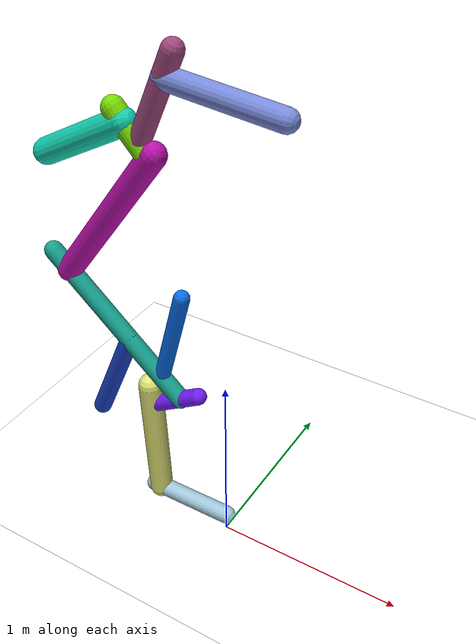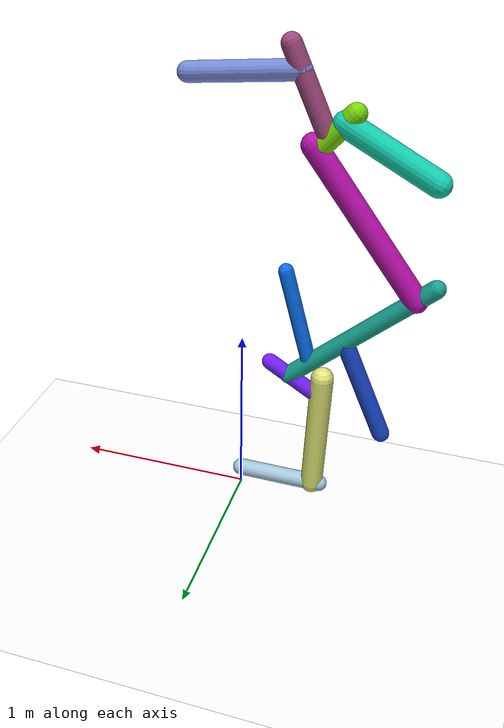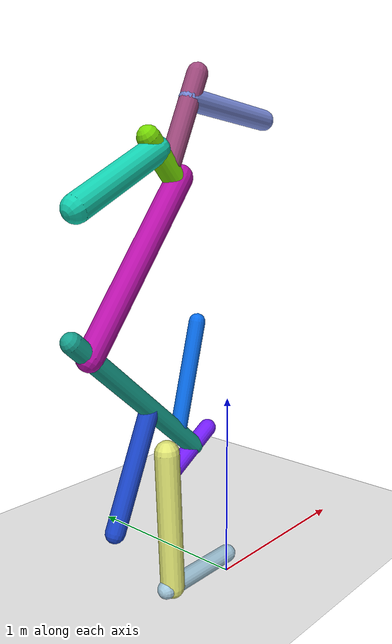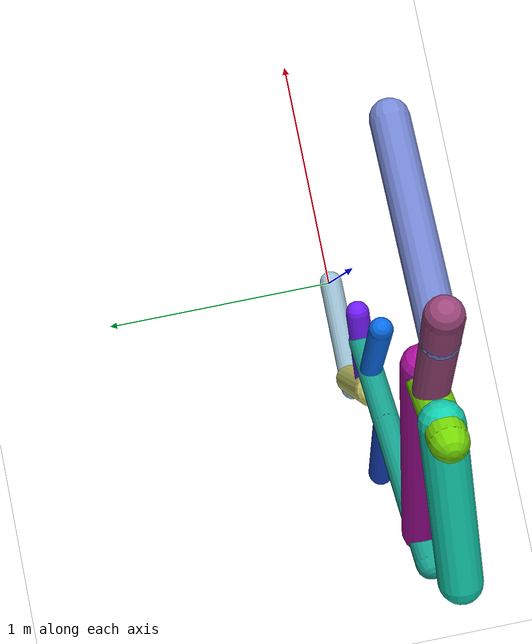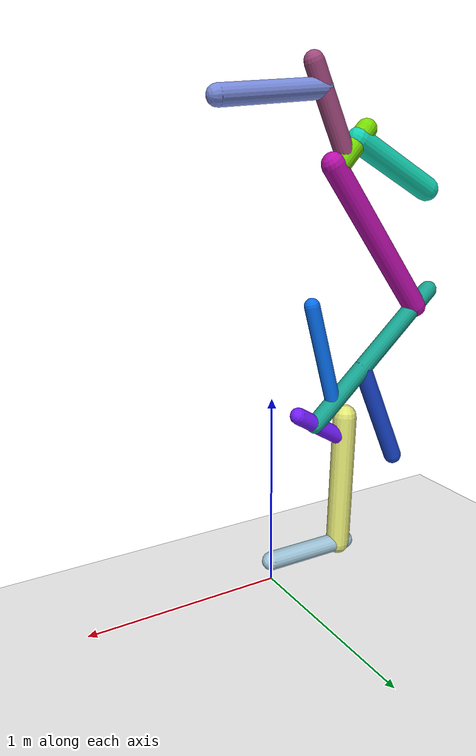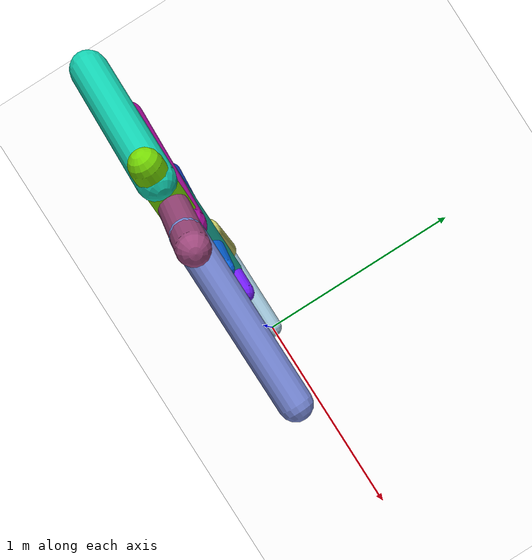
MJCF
<mujoco model="morphology">
  <option timestep="0.01"/>
  <default>
    <default class="/"/>
    <default class="0/"/>
    <default class="0/1/"/>
    <default class="0/1/2/"/>
    <default class="0/1/2/3/"/>
    <default class="0/1/2/3/4/"/>
    <default class="0/1/2/3/5/"/>
    <default class="0/1/2/3/5/6/"/>
    <default class="0/1/2/3/5/6/7/"/>
    <default class="0/1/2/3/5/6/8/"/>
    <default class="0/1/2/3/5/6/8/9/"/>
    <default class="0/1/2/3/10/"/>
  </default>
  <asset>
    <texture name="texplane" type="2d" builtin="checker" rgb1="0.10000000000000001 0.20000000000000001 0.29999999999999999" rgb2="0.20000000000000001 0.29999999999999999 0.40000000000000002" width="300" height="300"/>
    <material name="MatPlane" class="/" texture="texplane" texrepeat="20 20" specular="1" shininess="1" reflectance="0.5"/>
  </asset>
  <worldbody>
    <light name="//unnamed_light_0" class="/" directional="true" pos="0 0 1.5" dir="0 0 -1.3" cutoff="100" exponent="1" diffuse="1 1 1" specular="0.10000000000000001 0.10000000000000001 0.10000000000000001"/>
    <geom name="ground" class="/" type="plane" size="15 15 0.5" material="MatPlane" rgba="1 1 1 1"/>
    <site name="body" class="/" size="9.9999999999999995e-07 9.9999999999999995e-07 9.9999999999999995e-07" pos="0 0 0.10381871708668769"/>
    <body pos="0 0 0.10381871708668769" name="0/">
      <joint name="0/rootx/" class="/" type="slide" axis="1 0 0" limited="false" stiffness="0" armature="0" damping="0"/>
      <joint name="0/rootz/" class="/" type="slide" axis="0 0 1" limited="false" stiffness="0" armature="0" damping="0"/>
      <joint name="0/rooty/" class="/" type="hinge" axis="0 1 0" limited="false" stiffness="0" armature="0" damping="0"/>
      <geom name="0/geom" class="0/" type="capsule" contype="1" conaffinity="1" condim="3" size="0.048607320074202973" rgba="0.62600471413747139 0.77205023131233741 0.84819178884413216 1" friction="0.59999999999999998 0.10000000000000001 0.10000000000000001" fromto="0 0 0 -0.47253581909399595 0 -0.0038187171260941621"/>
      <site name="0/end0" class="0/" size="0.0050000000000000001" pos="-0.47253581909399595 0 -0.0038187171260941621"/>
      <site name="0/attach1" class="0/" size="9.9999999999999995e-07 9.9999999999999995e-07 9.9999999999999995e-07" pos="-0.43098798921221126 0 -0.0034829554692830038"/>
      <body pos="-0.43098798921221126 0 -0.0034829554692830038" name="0/1/">
        <joint name="0/1/joint/" class="0/" type="hinge" axis="0 1 0" limited="true" range="-55.705999735974899 55.705999735974899"/>
        <geom name="0/1/geom" class="0/1/" type="capsule" contype="1" conaffinity="1" condim="3" size="0.063082529030815168" rgba="0.87429581714171145 0.89532965351088889 0.45134733662487347 1" friction="0.59999999999999998 0.10000000000000001 0.10000000000000001" fromto="0 0 0 -0.02599942840614311 0 0.73039289112134376"/>
        <site name="0/1/end1" class="0/1/" size="0.0050000000000000001" pos="-0.02599942840614311 0 0.73039289112134376"/>
        <site name="0/1/attach2" class="0/1/" size="9.9999999999999995e-07 9.9999999999999995e-07 9.9999999999999995e-07" pos="-0.021489251709336462 0 0.60369006729040253"/>
        <body pos="-0.021489251709336462 0 0.60369006729040253" name="0/1/2/">
          <geom name="0/1/2/geom" class="0/1/2/" type="capsule" contype="1" conaffinity="1" condim="3" size="0.044060517229819351" rgba="0.44856449677686283 0.10637607332721166 0.97819265433600922 1" friction="0.59999999999999998 0.10000000000000001 0.10000000000000001" fromto="0 0 0 0.29253589475810671 0 0.17930102197794628"/>
          <site name="0/1/2/end2" class="0/1/2/" size="0.0050000000000000001" pos="0.29253589475810671 0 0.17930102197794628"/>
          <site name="0/1/2/attach3" class="0/1/2/" size="9.9999999999999995e-07 9.9999999999999995e-07 9.9999999999999995e-07" pos="0.18518552256895143 0 0.11350386071284979"/>
          <body pos="0.18518552256895143 0 0.11350386071284979" name="0/1/2/3/">
            <joint name="0/1/2/3/joint/" class="0/1/2/" type="hinge" axis="0 1 0" limited="true" range="-41.23968528833818 41.23968528833818"/>
            <geom name="0/1/2/3/geom" class="0/1/2/3/" type="capsule" contype="1" conaffinity="1" condim="3" size="0.048410276025171631" rgba="0.080124397023007887 0.62487969006987742 0.55062329589369174 1" friction="0.59999999999999998 0.10000000000000001 0.10000000000000001" fromto="0 0 0 -0.73170131449904785 0 0.65085784075618425"/>
            <site name="0/1/2/3/end3" class="0/1/2/3/" size="0.0050000000000000001" pos="-0.73170131449904785 0 0.65085784075618425"/>
            <site name="0/1/2/3/attach4" class="0/1/2/3/" size="9.9999999999999995e-07 9.9999999999999995e-07 9.9999999999999995e-07" pos="-0.11131778380518374 0 0.099018617254786834"/>
            <body pos="-0.11131778380518374 0 0.099018617254786834" name="0/1/2/3/4/">
              <joint name="0/1/2/3/4/joint/" class="0/1/2/3/" type="hinge" axis="0 1 0" limited="true" range="-39.096266843935382 39.096266843935382"/>
              <geom name="0/1/2/3/4/geom" class="0/1/2/3/4/" type="capsule" contype="1" conaffinity="1" condim="3" size="0.040683302739087261" rgba="0.029259528667033297 0.42525018559719996 0.92032830838463675 1" friction="0.59999999999999998 0.10000000000000001 0.10000000000000001" fromto="0 0 0 0.14521502248935214 0 0.53355751707723664"/>
              <site name="0/1/2/3/4/end4" class="0/1/2/3/4/" size="0.0050000000000000001" pos="0.14521502248935214 0 0.53355751707723664"/>
            </body>
            <site name="0/1/2/3/attach5" class="0/1/2/3/" size="9.9999999999999995e-07 9.9999999999999995e-07 9.9999999999999995e-07" pos="-0.64070507324551063 0 0.56991550004198954"/>
            <body pos="-0.64070507324551063 0 0.56991550004198954" name="0/1/2/3/5/">
              <joint name="0/1/2/3/5/joint/" class="0/1/2/3/" type="hinge" axis="0 1 0" limited="true" range="-38.988900820847206 38.988900820847206"/>
              <geom name="0/1/2/3/5/geom" class="0/1/2/3/5/" type="capsule" contype="1" conaffinity="1" condim="3" size="0.061862872638035304" rgba="0.71846903571485965 0.059323341124631779 0.66287291823962946 1" friction="0.59999999999999998 0.10000000000000001 0.10000000000000001" fromto="0 0 0 0.56317261549068354 0 0.747590777000114"/>
              <site name="0/1/2/3/5/end5" class="0/1/2/3/5/" size="0.0050000000000000001" pos="0.56317261549068354 0 0.747590777000114"/>
              <site name="0/1/2/3/5/attach6" class="0/1/2/3/5/" size="9.9999999999999995e-07 9.9999999999999995e-07 9.9999999999999995e-07" pos="0.54463367058972711 0 0.72298101466074194"/>
              <body pos="0.54463367058972711 0 0.72298101466074194" name="0/1/2/3/5/6/">
                <joint name="0/1/2/3/5/6/joint/" class="0/1/2/3/5/" type="hinge" axis="0 1 0" limited="true" range="-66.572888448030099 66.572888448030099"/>
                <geom name="0/1/2/3/5/6/geom" class="0/1/2/3/5/6/" type="capsule" contype="1" conaffinity="1" condim="3" size="0.053978681302575021" rgba="0.4569018486236337 0.84217299375059884 0.011690628598555186 1" friction="0.59999999999999998 0.10000000000000001 0.10000000000000001" fromto="0 0 0 -0.17473654783760573 0 0.19201503948202459"/>
                <site name="0/1/2/3/5/6/end6" class="0/1/2/3/5/6/" size="0.0050000000000000001" pos="-0.17473654783760573 0 0.19201503948202459"/>
                <site name="0/1/2/3/5/6/attach7" class="0/1/2/3/5/6/" size="9.9999999999999995e-07 9.9999999999999995e-07 9.9999999999999995e-07" pos="-0.1290521370928194 0 0.14181321255211599"/>
                <body pos="-0.1290521370928194 0 0.14181321255211599" name="0/1/2/3/5/6/7/">
                  <geom name="0/1/2/3/5/6/7/geom" class="0/1/2/3/5/6/7/" type="capsule" contype="1" conaffinity="1" condim="3" size="0.063353562473353178" rgba="0.067306094642964776 0.80119758386590956 0.67998609557857648 1" friction="0.59999999999999998 0.10000000000000001 0.10000000000000001" fromto="0 0 0 -0.45633726789117446 0 -0.24282336734025423"/>
                  <site name="0/1/2/3/5/6/7/end7" class="0/1/2/3/5/6/7/" size="0.0050000000000000001" pos="-0.45633726789117446 0 -0.24282336734025423"/>
                </body>
                <site name="0/1/2/3/5/6/attach8" class="0/1/2/3/5/6/" size="9.9999999999999995e-07 9.9999999999999995e-07 9.9999999999999995e-07" pos="-0.054942001215052931 0 0.060374836650283134"/>
                <body pos="-0.054942001215052931 0 0.060374836650283134" name="0/1/2/3/5/6/8/">
                  <joint name="0/1/2/3/5/6/8/joint/" class="0/1/2/3/5/6/" type="hinge" axis="0 1 0" limited="true" range="-42.17126088339009 42.17126088339009"/>
                  <geom name="0/1/2/3/5/6/8/geom" class="0/1/2/3/5/6/8/" type="capsule" contype="1" conaffinity="1" condim="3" size="0.050177795329994189" rgba="0.61457830101183986 0.27818079062809331 0.48432755691689522 1" friction="0.59999999999999998 0.10000000000000001 0.10000000000000001" fromto="0 0 0 0.19675364305319709 0 0.42726413535546559"/>
                  <site name="0/1/2/3/5/6/8/end8" class="0/1/2/3/5/6/8/" size="0.0050000000000000001" pos="0.19675364305319709 0 0.42726413535546559"/>
                  <site name="0/1/2/3/5/6/8/attach9" class="0/1/2/3/5/6/8/" size="9.9999999999999995e-07 9.9999999999999995e-07 9.9999999999999995e-07" pos="0.14341643451440958 0 0.31143870038531041"/>
                  <body pos="0.14341643451440958 0 0.31143870038531041" name="0/1/2/3/5/6/8/9/">
                    <joint name="0/1/2/3/5/6/8/9/joint/" class="0/1/2/3/5/6/8/" type="hinge" axis="0 1 0" limited="true" range="-63.810280234750913 63.810280234750913"/>
                    <geom name="0/1/2/3/5/6/8/9/geom" class="0/1/2/3/5/6/8/9/" type="capsule" contype="1" conaffinity="1" condim="3" size="0.051658397395338722" rgba="0.46323985119846711 0.53378921576296912 0.84108061818118163 1" friction="0.59999999999999998 0.10000000000000001 0.10000000000000001" fromto="0 0 0 0.55740843695050302 0 -0.054832798959830065"/>
                    <site name="0/1/2/3/5/6/8/9/end9" class="0/1/2/3/5/6/8/9/" size="0.0050000000000000001" pos="0.55740843695050302 0 -0.054832798959830065"/>
                  </body>
                </body>
              </body>
            </body>
            <site name="0/1/2/3/attach10" class="0/1/2/3/" size="9.9999999999999995e-07 9.9999999999999995e-07 9.9999999999999995e-07" pos="-0.29786980741814717 0 0.26495906982942558"/>
            <body pos="-0.29786980741814717 0 0.26495906982942558" name="0/1/2/3/10/">
              <joint name="0/1/2/3/10/joint/" class="0/1/2/3/" type="hinge" axis="0 1 0" limited="true" range="-64.694707229302935 64.694707229302935"/>
              <geom name="0/1/2/3/10/geom" class="0/1/2/3/10/" type="capsule" contype="1" conaffinity="1" condim="3" size="0.048235762736587848" rgba="0.095081698524305924 0.26537860620381115 0.78266776618660172 1" friction="0.59999999999999998 0.10000000000000001 0.10000000000000001" fromto="0 0 0 -0.23548441967566047 0 -0.54155423265195723"/>
              <site name="0/1/2/3/10/end10" class="0/1/2/3/10/" size="0.0050000000000000001" pos="-0.23548441967566047 0 -0.54155423265195723"/>
            </body>
          </body>
        </body>
      </body>
      <camera name="0/side" class="0/" mode="trackcom" pos="0.40000000000000002 -4 0.20000000000000001" quat="0.70699999999999996 0.70699999999999996 0 0"/>
    </body>
  </worldbody>
  <actuator>
    <motor name="0/1/motor" class="0/1/" ctrllimited="true" ctrlrange="-1 1" gear="63" joint="0/1/joint/"/>
    <motor name="0/1/2/3/motor" class="0/1/2/3/" ctrllimited="true" ctrlrange="-1 1" gear="78" joint="0/1/2/3/joint/"/>
    <motor name="0/1/2/3/4/motor" class="0/1/2/3/4/" ctrllimited="true" ctrlrange="-1 1" gear="70" joint="0/1/2/3/4/joint/"/>
    <motor name="0/1/2/3/5/motor" class="0/1/2/3/5/" ctrllimited="true" ctrlrange="-1 1" gear="65" joint="0/1/2/3/5/joint/"/>
    <motor name="0/1/2/3/5/6/motor" class="0/1/2/3/5/6/" ctrllimited="true" ctrlrange="-1 1" gear="73" joint="0/1/2/3/5/6/joint/"/>
    <motor name="0/1/2/3/5/6/8/motor" class="0/1/2/3/5/6/8/" ctrllimited="true" ctrlrange="-1 1" gear="68" joint="0/1/2/3/5/6/8/joint/"/>
    <motor name="0/1/2/3/5/6/8/9/motor" class="0/1/2/3/5/6/8/9/" ctrllimited="true" ctrlrange="-1 1" gear="73" joint="0/1/2/3/5/6/8/9/joint/"/>
    <motor name="0/1/2/3/10/motor" class="0/1/2/3/10/" ctrllimited="true" ctrlrange="-1 1" gear="67" joint="0/1/2/3/10/joint/"/>
  </actuator>
  <sensor>
    <subtreelinvel name="velocity" body="0/"/>
  </sensor>
</mujoco>
